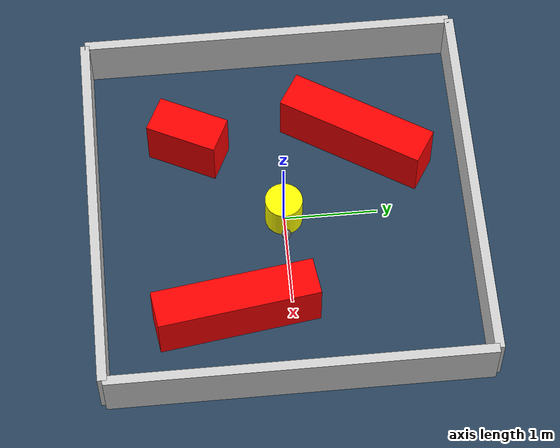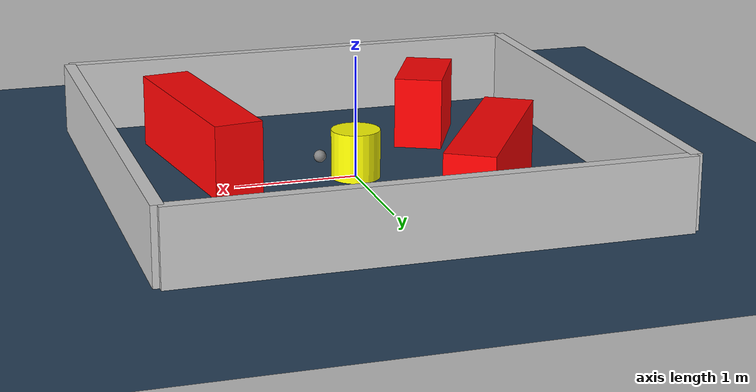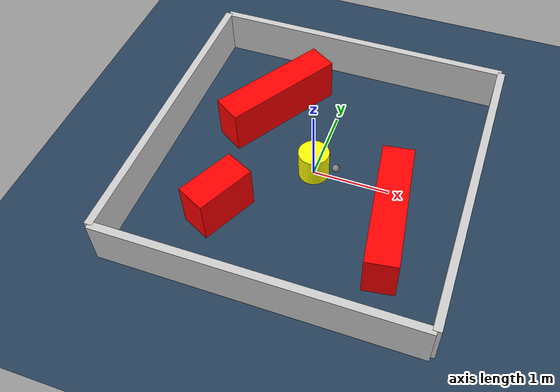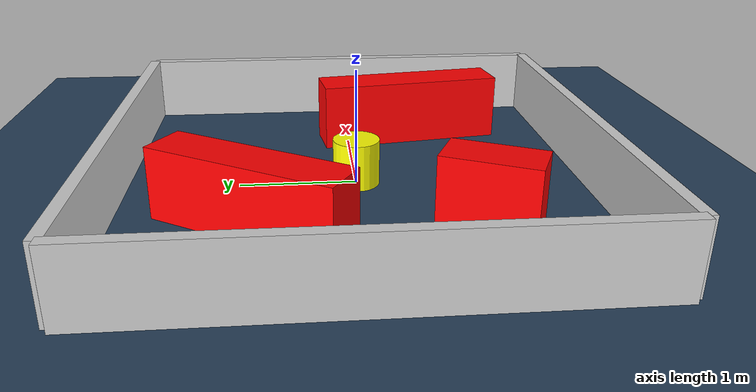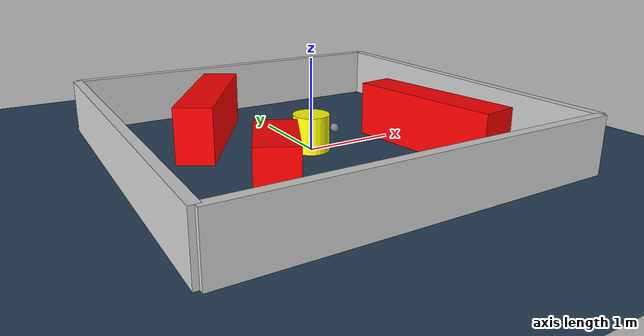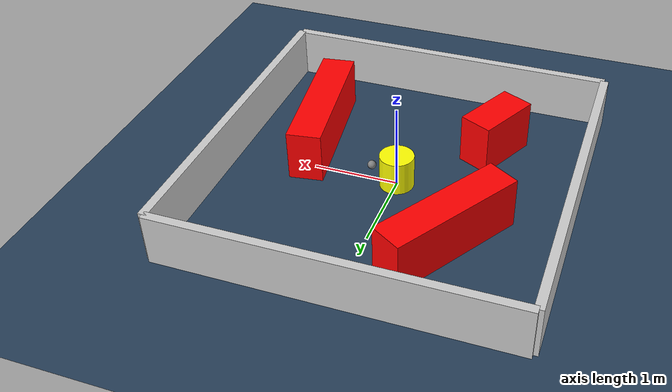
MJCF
<?xml version="1.0" ?>
<mujoco model="generated_environment">
  <option timestep="0.01" integrator="RK4" cone="elliptic"/>
  <default>
    <geom density="1"/>
  </default>
  <asset>
    <texture builtin="gradient" height="3072" rgb1="0.3 0.5 0.7" rgb2="0 0 0" type="skybox" width="512"/>
    <texture builtin="checker" height="300" mark="edge" markrgb="0.8 0.8 0.8" name="groundplane" rgb1="0.2 0.3 0.4" rgb2="0.1 0.2 0.3" type="2d" width="300"/>
    <material name="groundplane" reflectance="0.2" texrepeat="5 5" texture="groundplane" texuniform="true"/>
    <material name="robot" rgba="0.0 1.0 0.0 1"/>
  </asset>
  <worldbody>
    <light dir="0 0 -1" directional="true" pos="0 0 1.5"/>
    <geom condim="4" friction="1.0 0.005 0.001" material="groundplane" name="floor" size="0 0 0.05" type="plane"/>
    <body name="walls">
      <geom name="wall_1" condim="4" pos="-2.0 0.0 0.3" rgba="0.800000011920929 0.800000011920929 0.800000011920929 1.0" size="0.05 2.0 0.3" type="box"/>
      <geom name="wall_2" condim="4" pos="2.0 0.0 0.3" rgba="0.800000011920929 0.800000011920929 0.800000011920929 1.0" size="0.05 2.0 0.3" type="box"/>
      <geom name="wall_3" condim="4" pos="0.0 -2.0 0.3" rgba="0.800000011920929 0.800000011920929 0.800000011920929 1.0" size="2.0 0.05 0.3" type="box"/>
      <geom name="wall_4" condim="4" pos="0.0 2.0 0.3" rgba="0.800000011920929 0.800000011920929 0.800000011920929 1.0" size="2.0 0.05 0.3" type="box"/>
    </body>
    <body name="robot">
      <joint name="joint_x" type="slide" pos="0 0 0" axis="1 0 0"/>
      <joint name="joint_y" type="slide" pos="0 0 0" axis="0 1 0"/>
      <geom name="robot" type="sphere" pos="0.3 0.0 0.2" size="0.05" mass="5." friction="1.0 0.005 0.0001" condim="4" rgba="0.5 0.5 0.5 1.0"/>
      <site name="sensor_ball"/>
    </body>
    <body name="obstacle_movable_1">
      <geom name="obstacle_movable_1" condim="4" pos="0.0 0.0 0.2" euler="0 0 0.0" friction="1.0 0.005 0.001" rgba="1.0 1.0 0.0 1.0" size="0.2 0.2 0.0" type="cylinder" mass="0.1"/>
      <joint type="free"/>
    </body>
    <body name="obstacle_2_static">
      <geom name="obstacle_2_static" condim="4" pos="-0.826608517052067 0.8555321820650843 0.3" euler="0 0 58.34891662514686" friction="1.0 0.005 0.001" rgba="1 0 0 1" size="0.8137175092020397 0.2 0.3" type="box"/>
    </body>
    <body name="obstacle_3_static">
      <geom name="obstacle_3_static" condim="4" pos="1.1425323472117543 -0.5929182978019198 0.3" euler="0 0 278.16098661434285" friction="1.0 0.005 0.001" rgba="1 0 0 1" size="0.8531586715009725 0.2 0.3" type="box"/>
    </body>
    <body name="obstacle_4_static">
      <geom name="obstacle_4_static" condim="4" pos="-0.9053489239435677 -0.9546016027342601 0.3" euler="0 0 243.9940074384913" friction="1.0 0.005 0.001" rgba="1 0 0 1" size="0.38646467292346537 0.2 0.3" type="box"/>
    </body>
  </worldbody>
  <actuator>
    <motor name="actuator_x" joint="joint_x" gear="1" ctrlrange="-1 1"/>
    <motor name="actuator_y" joint="joint_y" gear="1" ctrlrange="-1 1"/>
  </actuator>
</mujoco>
